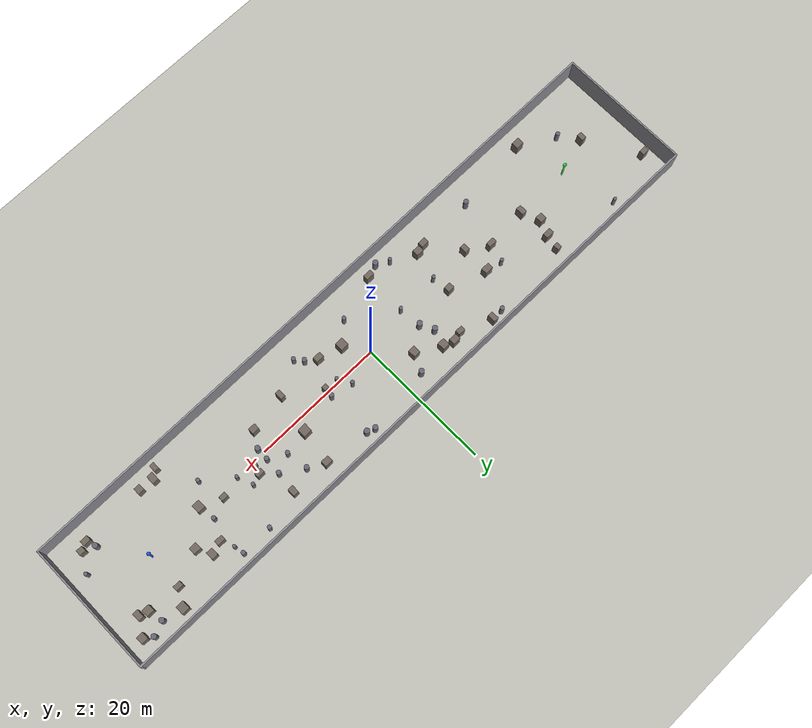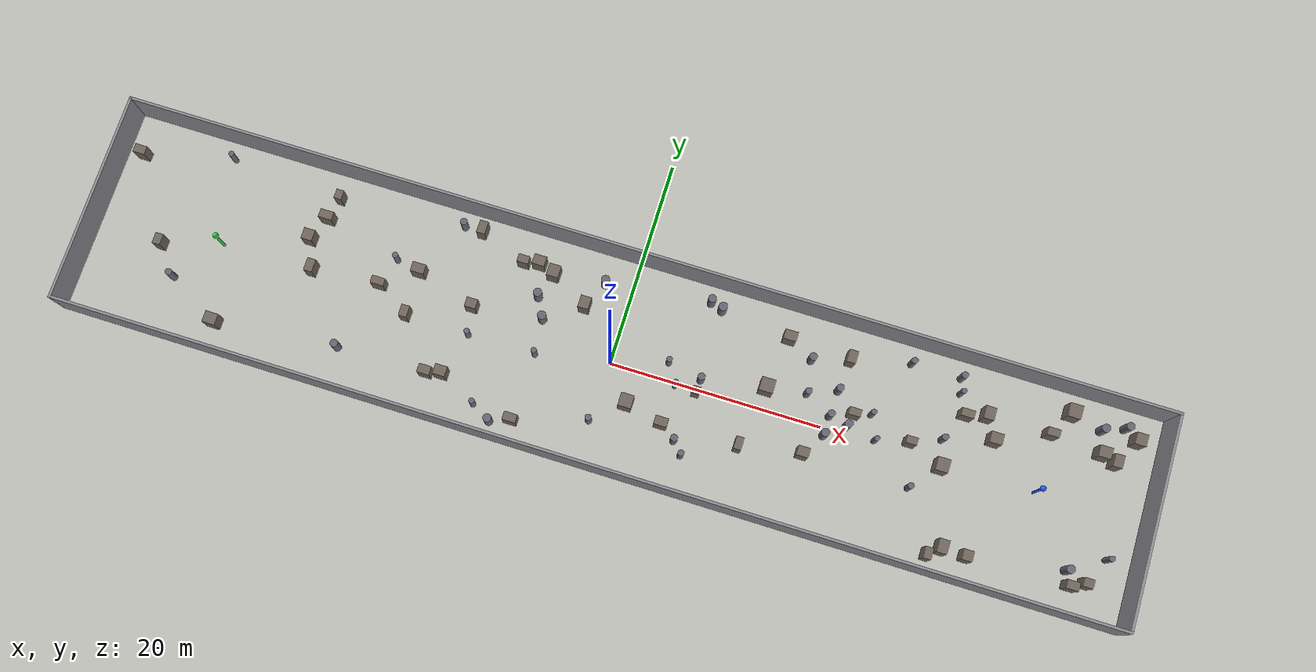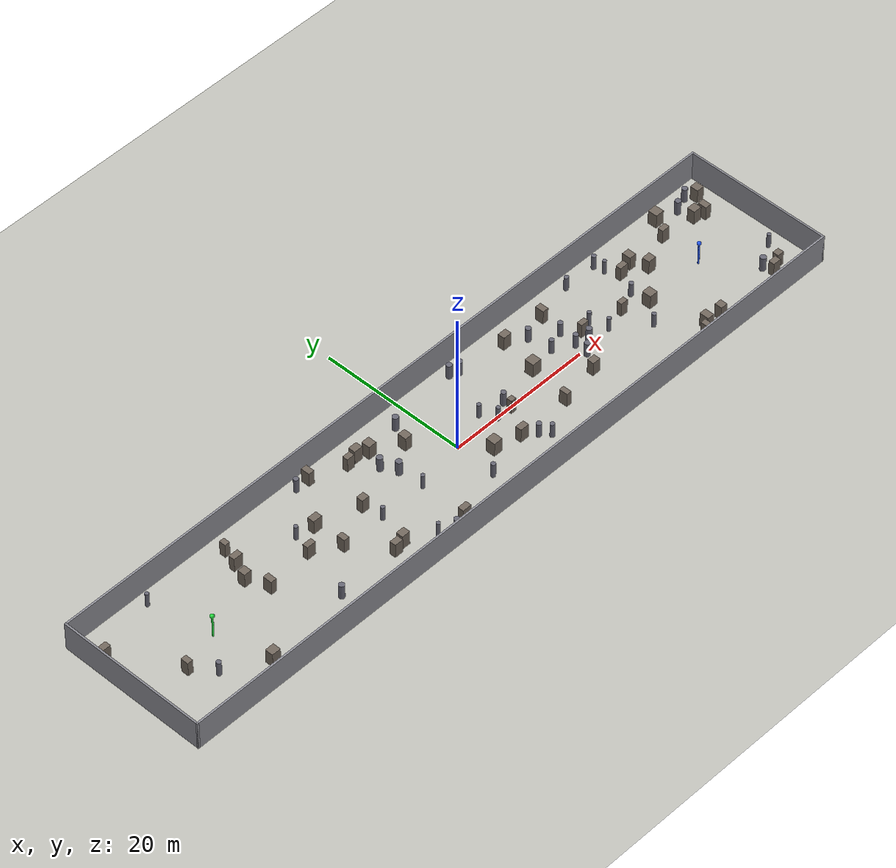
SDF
<?xml version="1.0" ?>
<sdf version="1.9">
  <world name="explore">
    <physics name="1ms" type="ignored">
      <max_step_size>0.001</max_step_size>
      <real_time_factor>1.0</real_time_factor>
      <real_time_update_rate>1000</real_time_update_rate>
    </physics>
    <plugin filename="gz-sim-physics-system" name="gz::sim::systems::Physics"/>
    <plugin filename="gz-sim-user-commands-system" name="gz::sim::systems::UserCommands"/>
    <plugin filename="gz-sim-scene-broadcaster-system" name="gz::sim::systems::SceneBroadcaster"/>
    <plugin filename="gz-sim-contact-system" name="gz::sim::systems::Contact"/>
    <plugin filename="gz-sim-imu-system" name="gz::sim::systems::Imu"/>
    <plugin filename="gz-sim-sensors-system" name="gz::sim::systems::Sensors">
      <render_engine>ogre2</render_engine>
    </plugin>
    <gui fullscreen="0">
      <camera name="user_camera">
        <pose>-42 -14 12 0 0.55 0.75</pose>
        <view_controller>orbit</view_controller>
        <projection_type>perspective</projection_type>
      </camera>
    </gui>
    <gravity>0 0 -9.8</gravity>
    <light type="directional" name="sun">
      <cast_shadows>true</cast_shadows>
      <pose>0 0 20 0 0 0</pose>
      <diffuse>0.8 0.8 0.8 1</diffuse>
      <specular>0.2 0.2 0.2 1</specular>
      <direction>-0.5 0.1 -0.9</direction>
    </light>
    <model name="ground_plane">
      <static>true</static>
      <link name="link">
        <collision name="collision">
          <geometry><plane><normal>0 0 1</normal><size>120 40</size></plane></geometry>
        </collision>
        <visual name="visual">
          <geometry><plane><normal>0 0 1</normal><size>120 40</size></plane></geometry>
          <material>
            <ambient>0.75 0.75 0.72 1</ambient>
            <diffuse>0.75 0.75 0.72 1</diffuse>
          </material>
        </visual>
      </link>
    </model>
    <model name="wall_north">
      <static>true</static>
      <pose>0.000 10.000 2.000 0 0 0</pose>
      <link name="link">
        <collision name="c"><geometry><box><size>100.250 0.250 4.000</size></box></geometry></collision>
        <visual name="v">
          <geometry><box><size>100.250 0.250 4.000</size></box></geometry>
          <material><ambient>0.55 0.55 0.58 1</ambient><diffuse>0.55 0.55 0.58 1</diffuse></material>
        </visual>
      </link>
    </model>
    <model name="wall_south">
      <static>true</static>
      <pose>0.000 -10.000 2.000 0 0 0</pose>
      <link name="link">
        <collision name="c"><geometry><box><size>100.250 0.250 4.000</size></box></geometry></collision>
        <visual name="v">
          <geometry><box><size>100.250 0.250 4.000</size></box></geometry>
          <material><ambient>0.55 0.55 0.58 1</ambient><diffuse>0.55 0.55 0.58 1</diffuse></material>
        </visual>
      </link>
    </model>
    <model name="wall_east">
      <static>true</static>
      <pose>50.000 0.000 2.000 0 0 0</pose>
      <link name="link">
        <collision name="c"><geometry><box><size>0.250 20.250 4.000</size></box></geometry></collision>
        <visual name="v">
          <geometry><box><size>0.250 20.250 4.000</size></box></geometry>
          <material><ambient>0.55 0.55 0.58 1</ambient><diffuse>0.55 0.55 0.58 1</diffuse></material>
        </visual>
      </link>
    </model>
    <model name="wall_west">
      <static>true</static>
      <pose>-50.000 0.000 2.000 0 0 0</pose>
      <link name="link">
        <collision name="c"><geometry><box><size>0.250 20.250 4.000</size></box></geometry></collision>
        <visual name="v">
          <geometry><box><size>0.250 20.250 4.000</size></box></geometry>
          <material><ambient>0.55 0.55 0.58 1</ambient><diffuse>0.55 0.55 0.58 1</diffuse></material>
        </visual>
      </link>
    </model>
    <model name="box_0">
      <static>true</static>
      <pose>13.285 -3.914 1 0 0 0</pose>
      <link name="link">
        <collision name="c"><geometry><box><size>0.710 1.188 2</size></box></geometry></collision>
        <visual name="v">
          <geometry><box><size>0.710 1.188 2</size></box></geometry>
          <material><ambient>0.44 0.40 0.36 1</ambient><diffuse>0.44 0.40 0.36 1</diffuse></material>
        </visual>
      </link>
    </model>
    <model name="cyl_1">
      <static>true</static>
      <pose>22.261 0.742 1 0 0 0</pose>
      <link name="link">
        <collision name="c"><geometry><cylinder><radius>0.389</radius><length>2</length></cylinder></geometry></collision>
        <visual name="v">
          <geometry><cylinder><radius>0.389</radius><length>2</length></cylinder></geometry>
          <material><ambient>0.40 0.40 0.45 1</ambient><diffuse>0.40 0.40 0.45 1</diffuse></material>
        </visual>
      </link>
    </model>
    <model name="box_2">
      <static>true</static>
      <pose>-48.234 6.076 1 0 0 0</pose>
      <link name="link">
        <collision name="c"><geometry><box><size>1.138 0.805 2</size></box></geometry></collision>
        <visual name="v">
          <geometry><box><size>1.138 0.805 2</size></box></geometry>
          <material><ambient>0.44 0.40 0.36 1</ambient><diffuse>0.44 0.40 0.36 1</diffuse></material>
        </visual>
      </link>
    </model>
    <model name="box_3">
      <static>true</static>
      <pose>-19.428 -1.314 1 0 0 0</pose>
      <link name="link">
        <collision name="c"><geometry><box><size>0.775 1.102 2</size></box></geometry></collision>
        <visual name="v">
          <geometry><box><size>0.775 1.102 2</size></box></geometry>
          <material><ambient>0.44 0.40 0.36 1</ambient><diffuse>0.44 0.40 0.36 1</diffuse></material>
        </visual>
      </link>
    </model>
    <model name="box_4">
      <static>true</static>
      <pose>14.277 1.962 1 0 0 0</pose>
      <link name="link">
        <collision name="c"><geometry><box><size>1.298 1.289 2</size></box></geometry></collision>
        <visual name="v">
          <geometry><box><size>1.298 1.289 2</size></box></geometry>
          <material><ambient>0.44 0.40 0.36 1</ambient><diffuse>0.44 0.40 0.36 1</diffuse></material>
        </visual>
      </link>
    </model>
    <model name="cyl_5">
      <static>true</static>
      <pose>17.998 2.558 1 0 0 0</pose>
      <link name="link">
        <collision name="c"><geometry><cylinder><radius>0.316</radius><length>2</length></cylinder></geometry></collision>
        <visual name="v">
          <geometry><cylinder><radius>0.316</radius><length>2</length></cylinder></geometry>
          <material><ambient>0.40 0.40 0.45 1</ambient><diffuse>0.40 0.40 0.45 1</diffuse></material>
        </visual>
      </link>
    </model>
    <model name="box_6">
      <static>true</static>
      <pose>2.459 -3.226 1 0 0 0</pose>
      <link name="link">
        <collision name="c"><geometry><box><size>1.234 1.260 2</size></box></geometry></collision>
        <visual name="v">
          <geometry><box><size>1.234 1.260 2</size></box></geometry>
          <material><ambient>0.44 0.40 0.36 1</ambient><diffuse>0.44 0.40 0.36 1</diffuse></material>
        </visual>
      </link>
    </model>
    <model name="box_7">
      <static>true</static>
      <pose>-13.794 1.216 1 0 0 0</pose>
      <link name="link">
        <collision name="c"><geometry><box><size>1.057 0.903 2</size></box></geometry></collision>
        <visual name="v">
          <geometry><box><size>1.057 0.903 2</size></box></geometry>
          <material><ambient>0.44 0.40 0.36 1</ambient><diffuse>0.44 0.40 0.36 1</diffuse></material>
        </visual>
      </link>
    </model>
    <model name="box_8">
      <static>true</static>
      <pose>-10.513 6.635 1 0 0 0</pose>
      <link name="link">
        <collision name="c"><geometry><box><size>1.074 0.750 2</size></box></geometry></collision>
        <visual name="v">
          <geometry><box><size>1.074 0.750 2</size></box></geometry>
          <material><ambient>0.44 0.40 0.36 1</ambient><diffuse>0.44 0.40 0.36 1</diffuse></material>
        </visual>
      </link>
    </model>
    <model name="box_9">
      <static>true</static>
      <pose>32.266 4.881 1 0 0 0</pose>
      <link name="link">
        <collision name="c"><geometry><box><size>1.226 0.735 2</size></box></geometry></collision>
        <visual name="v">
          <geometry><box><size>1.226 0.735 2</size></box></geometry>
          <material><ambient>0.44 0.40 0.36 1</ambient><diffuse>0.44 0.40 0.36 1</diffuse></material>
        </visual>
      </link>
    </model>
    <model name="box_10">
      <static>true</static>
      <pose>-15.897 -5.945 1 0 0 0</pose>
      <link name="link">
        <collision name="c"><geometry><box><size>1.178 0.838 2</size></box></geometry></collision>
        <visual name="v">
          <geometry><box><size>1.178 0.838 2</size></box></geometry>
          <material><ambient>0.44 0.40 0.36 1</ambient><diffuse>0.44 0.40 0.36 1</diffuse></material>
        </visual>
      </link>
    </model>
    <model name="box_11">
      <static>true</static>
      <pose>-43.454 -1.623 1 0 0 0</pose>
      <link name="link">
        <collision name="c"><geometry><box><size>0.754 1.048 2</size></box></geometry></collision>
        <visual name="v">
          <geometry><box><size>0.754 1.048 2</size></box></geometry>
          <material><ambient>0.44 0.40 0.36 1</ambient><diffuse>0.44 0.40 0.36 1</diffuse></material>
        </visual>
      </link>
    </model>
    <model name="box_12">
      <static>true</static>
      <pose>-19.526 2.924 1 0 0 0</pose>
      <link name="link">
        <collision name="c"><geometry><box><size>1.265 0.919 2</size></box></geometry></collision>
        <visual name="v">
          <geometry><box><size>1.265 0.919 2</size></box></geometry>
          <material><ambient>0.44 0.40 0.36 1</ambient><diffuse>0.44 0.40 0.36 1</diffuse></material>
        </visual>
      </link>
    </model>
    <model name="cyl_13">
      <static>true</static>
      <pose>-7.253 2.044 1 0 0 0</pose>
      <link name="link">
        <collision name="c"><geometry><cylinder><radius>0.411</radius><length>2</length></cylinder></geometry></collision>
        <visual name="v">
          <geometry><cylinder><radius>0.411</radius><length>2</length></cylinder></geometry>
          <material><ambient>0.40 0.40 0.45 1</ambient><diffuse>0.40 0.40 0.45 1</diffuse></material>
        </visual>
      </link>
    </model>
    <model name="box_14">
      <static>true</static>
      <pose>-3.876 4.381 1 0 0 0</pose>
      <link name="link">
        <collision name="c"><geometry><box><size>1.018 1.171 2</size></box></geometry></collision>
        <visual name="v">
          <geometry><box><size>1.018 1.171 2</size></box></geometry>
          <material><ambient>0.44 0.40 0.36 1</ambient><diffuse>0.44 0.40 0.36 1</diffuse></material>
        </visual>
      </link>
    </model>
    <model name="cyl_15">
      <static>true</static>
      <pose>-8.278 3.986 1 0 0 0</pose>
      <link name="link">
        <collision name="c"><geometry><cylinder><radius>0.408</radius><length>2</length></cylinder></geometry></collision>
        <visual name="v">
          <geometry><cylinder><radius>0.408</radius><length>2</length></cylinder></geometry>
          <material><ambient>0.40 0.40 0.45 1</ambient><diffuse>0.40 0.40 0.45 1</diffuse></material>
        </visual>
      </link>
    </model>
    <model name="box_16">
      <static>true</static>
      <pose>41.460 7.955 1 0 0 0</pose>
      <link name="link">
        <collision name="c"><geometry><box><size>1.218 1.289 2</size></box></geometry></collision>
        <visual name="v">
          <geometry><box><size>1.218 1.289 2</size></box></geometry>
          <material><ambient>0.44 0.40 0.36 1</ambient><diffuse>0.44 0.40 0.36 1</diffuse></material>
        </visual>
      </link>
    </model>
    <model name="cyl_17">
      <static>true</static>
      <pose>44.349 -5.971 1 0 0 0</pose>
      <link name="link">
        <collision name="c"><geometry><cylinder><radius>0.401</radius><length>2</length></cylinder></geometry></collision>
        <visual name="v">
          <geometry><cylinder><radius>0.401</radius><length>2</length></cylinder></geometry>
          <material><ambient>0.40 0.40 0.45 1</ambient><diffuse>0.40 0.40 0.45 1</diffuse></material>
        </visual>
      </link>
    </model>
    <model name="box_18">
      <static>true</static>
      <pose>31.270 -0.340 1 0 0 0</pose>
      <link name="link">
        <collision name="c"><geometry><box><size>1.181 1.254 2</size></box></geometry></collision>
        <visual name="v">
          <geometry><box><size>1.181 1.254 2</size></box></geometry>
          <material><ambient>0.44 0.40 0.36 1</ambient><diffuse>0.44 0.40 0.36 1</diffuse></material>
        </visual>
      </link>
    </model>
    <model name="box_19">
      <static>true</static>
      <pose>-22.685 0.662 1 0 0 0</pose>
      <link name="link">
        <collision name="c"><geometry><box><size>1.259 0.724 2</size></box></geometry></collision>
        <visual name="v">
          <geometry><box><size>1.259 0.724 2</size></box></geometry>
          <material><ambient>0.44 0.40 0.36 1</ambient><diffuse>0.44 0.40 0.36 1</diffuse></material>
        </visual>
      </link>
    </model>
    <model name="box_20">
      <static>true</static>
      <pose>22.505 1.944 1 0 0 0</pose>
      <link name="link">
        <collision name="c"><geometry><box><size>1.132 0.710 2</size></box></geometry></collision>
        <visual name="v">
          <geometry><box><size>1.132 0.710 2</size></box></geometry>
          <material><ambient>0.44 0.40 0.36 1</ambient><diffuse>0.44 0.40 0.36 1</diffuse></material>
        </visual>
      </link>
    </model>
    <model name="cyl_21">
      <static>true</static>
      <pose>25.021 0.217 1 0 0 0</pose>
      <link name="link">
        <collision name="c"><geometry><cylinder><radius>0.261</radius><length>2</length></cylinder></geometry></collision>
        <visual name="v">
          <geometry><cylinder><radius>0.261</radius><length>2</length></cylinder></geometry>
          <material><ambient>0.40 0.40 0.45 1</ambient><diffuse>0.40 0.40 0.45 1</diffuse></material>
        </visual>
      </link>
    </model>
    <model name="box_22">
      <static>true</static>
      <pose>33.108 -7.366 1 0 0 0</pose>
      <link name="link">
        <collision name="c"><geometry><box><size>0.958 1.280 2</size></box></geometry></collision>
        <visual name="v">
          <geometry><box><size>0.958 1.280 2</size></box></geometry>
          <material><ambient>0.44 0.40 0.36 1</ambient><diffuse>0.44 0.40 0.36 1</diffuse></material>
        </visual>
      </link>
    </model>
    <model name="box_23">
      <static>true</static>
      <pose>6.036 -4.099 1 0 0 0</pose>
      <link name="link">
        <collision name="c"><geometry><box><size>1.233 0.836 2</size></box></geometry></collision>
        <visual name="v">
          <geometry><box><size>1.233 0.836 2</size></box></geometry>
          <material><ambient>0.44 0.40 0.36 1</ambient><diffuse>0.44 0.40 0.36 1</diffuse></material>
        </visual>
      </link>
    </model>
    <model name="cyl_24">
      <static>true</static>
      <pose>8.354 0.920 1 0 0 0</pose>
      <link name="link">
        <collision name="c"><geometry><cylinder><radius>0.345</radius><length>2</length></cylinder></geometry></collision>
        <visual name="v">
          <geometry><cylinder><radius>0.345</radius><length>2</length></cylinder></geometry>
          <material><ambient>0.40 0.40 0.45 1</ambient><diffuse>0.40 0.40 0.45 1</diffuse></material>
        </visual>
      </link>
    </model>
    <model name="cyl_25">
      <static>true</static>
      <pose>30.858 2.151 1 0 0 0</pose>
      <link name="link">
        <collision name="c"><geometry><cylinder><radius>0.313</radius><length>2</length></cylinder></geometry></collision>
        <visual name="v">
          <geometry><cylinder><radius>0.313</radius><length>2</length></cylinder></geometry>
          <material><ambient>0.40 0.40 0.45 1</ambient><diffuse>0.40 0.40 0.45 1</diffuse></material>
        </visual>
      </link>
    </model>
    <model name="cyl_26">
      <static>true</static>
      <pose>5.103 1.597 1 0 0 0</pose>
      <link name="link">
        <collision name="c"><geometry><cylinder><radius>0.275</radius><length>2</length></cylinder></geometry></collision>
        <visual name="v">
          <geometry><cylinder><radius>0.275</radius><length>2</length></cylinder></geometry>
          <material><ambient>0.40 0.40 0.45 1</ambient><diffuse>0.40 0.40 0.45 1</diffuse></material>
        </visual>
      </link>
    </model>
    <model name="box_27">
      <static>true</static>
      <pose>-9.068 6.969 1 0 0 0</pose>
      <link name="link">
        <collision name="c"><geometry><box><size>1.194 0.949 2</size></box></geometry></collision>
        <visual name="v">
          <geometry><box><size>1.194 0.949 2</size></box></geometry>
          <material><ambient>0.44 0.40 0.36 1</ambient><diffuse>0.44 0.40 0.36 1</diffuse></material>
        </visual>
      </link>
    </model>
    <model name="box_28">
      <static>true</static>
      <pose>31.991 -8.331 1 0 0 0</pose>
      <link name="link">
        <collision name="c"><geometry><box><size>0.747 1.092 2</size></box></geometry></collision>
        <visual name="v">
          <geometry><box><size>0.747 1.092 2</size></box></geometry>
          <material><ambient>0.44 0.40 0.36 1</ambient><diffuse>0.44 0.40 0.36 1</diffuse></material>
        </visual>
      </link>
    </model>
    <model name="cyl_29">
      <static>true</static>
      <pose>-21.937 3.445 1 0 0 0</pose>
      <link name="link">
        <collision name="c"><geometry><cylinder><radius>0.272</radius><length>2</length></cylinder></geometry></collision>
        <visual name="v">
          <geometry><cylinder><radius>0.272</radius><length>2</length></cylinder></geometry>
          <material><ambient>0.40 0.40 0.45 1</ambient><diffuse>0.40 0.40 0.45 1</diffuse></material>
        </visual>
      </link>
    </model>
    <model name="box_30">
      <static>true</static>
      <pose>35.383 -7.489 1 0 0 0</pose>
      <link name="link">
        <collision name="c"><geometry><box><size>0.958 0.993 2</size></box></geometry></collision>
        <visual name="v">
          <geometry><box><size>0.958 0.993 2</size></box></geometry>
          <material><ambient>0.44 0.40 0.36 1</ambient><diffuse>0.44 0.40 0.36 1</diffuse></material>
        </visual>
      </link>
    </model>
    <model name="box_31">
      <static>true</static>
      <pose>46.217 4.687 1 0 0 0</pose>
      <link name="link">
        <collision name="c"><geometry><box><size>0.862 1.218 2</size></box></geometry></collision>
        <visual name="v">
          <geometry><box><size>0.862 1.218 2</size></box></geometry>
          <material><ambient>0.44 0.40 0.36 1</ambient><diffuse>0.44 0.40 0.36 1</diffuse></material>
        </visual>
      </link>
    </model>
    <model name="box_32">
      <static>true</static>
      <pose>-15.103 8.414 1 0 0 0</pose>
      <link name="link">
        <collision name="c"><geometry><box><size>0.810 1.228 2</size></box></geometry></collision>
        <visual name="v">
          <geometry><box><size>0.810 1.228 2</size></box></geometry>
          <material><ambient>0.44 0.40 0.36 1</ambient><diffuse>0.44 0.40 0.36 1</diffuse></material>
        </visual>
      </link>
    </model>
    <model name="cyl_33">
      <static>true</static>
      <pose>44.466 7.237 1 0 0 0</pose>
      <link name="link">
        <collision name="c"><geometry><cylinder><radius>0.396</radius><length>2</length></cylinder></geometry></collision>
        <visual name="v">
          <geometry><cylinder><radius>0.396</radius><length>2</length></cylinder></geometry>
          <material><ambient>0.40 0.40 0.45 1</ambient><diffuse>0.40 0.40 0.45 1</diffuse></material>
        </visual>
      </link>
    </model>
    <model name="cyl_34">
      <static>true</static>
      <pose>-24.527 -6.099 1 0 0 0</pose>
      <link name="link">
        <collision name="c"><geometry><cylinder><radius>0.371</radius><length>2</length></cylinder></geometry></collision>
        <visual name="v">
          <geometry><cylinder><radius>0.371</radius><length>2</length></cylinder></geometry>
          <material><ambient>0.40 0.40 0.45 1</ambient><diffuse>0.40 0.40 0.45 1</diffuse></material>
        </visual>
      </link>
    </model>
    <model name="cyl_35">
      <static>true</static>
      <pose>7.599 -5.200 1 0 0 0</pose>
      <link name="link">
        <collision name="c"><geometry><cylinder><radius>0.339</radius><length>2</length></cylinder></geometry></collision>
        <visual name="v">
          <geometry><cylinder><radius>0.339</radius><length>2</length></cylinder></geometry>
          <material><ambient>0.40 0.40 0.45 1</ambient><diffuse>0.40 0.40 0.45 1</diffuse></material>
        </visual>
      </link>
    </model>
    <model name="cyl_36">
      <static>true</static>
      <pose>-39.873 8.193 1 0 0 0</pose>
      <link name="link">
        <collision name="c"><geometry><cylinder><radius>0.251</radius><length>2</length></cylinder></geometry></collision>
        <visual name="v">
          <geometry><cylinder><radius>0.251</radius><length>2</length></cylinder></geometry>
          <material><ambient>0.40 0.40 0.45 1</ambient><diffuse>0.40 0.40 0.45 1</diffuse></material>
        </visual>
      </link>
    </model>
    <model name="cyl_37">
      <static>true</static>
      <pose>26.447 8.131 1 0 0 0</pose>
      <link name="link">
        <collision name="c"><geometry><cylinder><radius>0.304</radius><length>2</length></cylinder></geometry></collision>
        <visual name="v">
          <geometry><cylinder><radius>0.304</radius><length>2</length></cylinder></geometry>
          <material><ambient>0.40 0.40 0.45 1</ambient><diffuse>0.40 0.40 0.45 1</diffuse></material>
        </visual>
      </link>
    </model>
    <model name="box_38">
      <static>true</static>
      <pose>-30.312 2.933 1 0 0 0</pose>
      <link name="link">
        <collision name="c"><geometry><box><size>1.047 1.061 2</size></box></geometry></collision>
        <visual name="v">
          <geometry><box><size>1.047 1.061 2</size></box></geometry>
          <material><ambient>0.44 0.40 0.36 1</ambient><diffuse>0.44 0.40 0.36 1</diffuse></material>
        </visual>
      </link>
    </model>
    <model name="box_39">
      <static>true</static>
      <pose>44.855 -7.271 1 0 0 0</pose>
      <link name="link">
        <collision name="c"><geometry><box><size>1.146 0.806 2</size></box></geometry></collision>
        <visual name="v">
          <geometry><box><size>1.146 0.806 2</size></box></geometry>
          <material><ambient>0.44 0.40 0.36 1</ambient><diffuse>0.44 0.40 0.36 1</diffuse></material>
        </visual>
      </link>
    </model>
    <model name="cyl_40">
      <static>true</static>
      <pose>-10.858 -7.431 1 0 0 0</pose>
      <link name="link">
        <collision name="c"><geometry><cylinder><radius>0.265</radius><length>2</length></cylinder></geometry></collision>
        <visual name="v">
          <geometry><cylinder><radius>0.265</radius><length>2</length></cylinder></geometry>
          <material><ambient>0.40 0.40 0.45 1</ambient><diffuse>0.40 0.40 0.45 1</diffuse></material>
        </visual>
      </link>
    </model>
    <model name="cyl_41">
      <static>true</static>
      <pose>-2.687 7.015 1 0 0 0</pose>
      <link name="link">
        <collision name="c"><geometry><cylinder><radius>0.406</radius><length>2</length></cylinder></geometry></collision>
        <visual name="v">
          <geometry><cylinder><radius>0.406</radius><length>2</length></cylinder></geometry>
          <material><ambient>0.40 0.40 0.45 1</ambient><diffuse>0.40 0.40 0.45 1</diffuse></material>
        </visual>
      </link>
    </model>
    <model name="box_42">
      <static>true</static>
      <pose>-36.142 -7.249 1 0 0 0</pose>
      <link name="link">
        <collision name="c"><geometry><box><size>1.221 1.080 2</size></box></geometry></collision>
        <visual name="v">
          <geometry><box><size>1.221 1.080 2</size></box></geometry>
          <material><ambient>0.44 0.40 0.36 1</ambient><diffuse>0.44 0.40 0.36 1</diffuse></material>
        </visual>
      </link>
    </model>
    <model name="cyl_43">
      <static>true</static>
      <pose>-0.333 -5.720 1 0 0 0</pose>
      <link name="link">
        <collision name="c"><geometry><cylinder><radius>0.304</radius><length>2</length></cylinder></geometry></collision>
        <visual name="v">
          <geometry><cylinder><radius>0.304</radius><length>2</length></cylinder></geometry>
          <material><ambient>0.40 0.40 0.45 1</ambient><diffuse>0.40 0.40 0.45 1</diffuse></material>
        </visual>
      </link>
    </model>
    <model name="cyl_44">
      <static>true</static>
      <pose>20.455 -0.674 1 0 0 0</pose>
      <link name="link">
        <collision name="c"><geometry><cylinder><radius>0.384</radius><length>2</length></cylinder></geometry></collision>
        <visual name="v">
          <geometry><cylinder><radius>0.384</radius><length>2</length></cylinder></geometry>
          <material><ambient>0.40 0.40 0.45 1</ambient><diffuse>0.40 0.40 0.45 1</diffuse></material>
        </visual>
      </link>
    </model>
    <model name="box_45">
      <static>true</static>
      <pose>-29.368 5.238 1 0 0 0</pose>
      <link name="link">
        <collision name="c"><geometry><box><size>1.293 0.810 2</size></box></geometry></collision>
        <visual name="v">
          <geometry><box><size>1.293 0.810 2</size></box></geometry>
          <material><ambient>0.44 0.40 0.36 1</ambient><diffuse>0.44 0.40 0.36 1</diffuse></material>
        </visual>
      </link>
    </model>
    <model name="box_46">
      <static>true</static>
      <pose>44.913 5.116 1 0 0 0</pose>
      <link name="link">
        <collision name="c"><geometry><box><size>1.188 1.062 2</size></box></geometry></collision>
        <visual name="v">
          <geometry><box><size>1.188 1.062 2</size></box></geometry>
          <material><ambient>0.44 0.40 0.36 1</ambient><diffuse>0.44 0.40 0.36 1</diffuse></material>
        </visual>
      </link>
    </model>
    <model name="box_47">
      <static>true</static>
      <pose>15.047 7.033 1 0 0 0</pose>
      <link name="link">
        <collision name="c"><geometry><box><size>1.201 0.929 2</size></box></geometry></collision>
        <visual name="v">
          <geometry><box><size>1.201 0.929 2</size></box></geometry>
          <material><ambient>0.44 0.40 0.36 1</ambient><diffuse>0.44 0.40 0.36 1</diffuse></material>
        </visual>
      </link>
    </model>
    <model name="cyl_48">
      <static>true</static>
      <pose>-16.922 8.398 1 0 0 0</pose>
      <link name="link">
        <collision name="c"><geometry><cylinder><radius>0.333</radius><length>2</length></cylinder></geometry></collision>
        <visual name="v">
          <geometry><cylinder><radius>0.333</radius><length>2</length></cylinder></geometry>
          <material><ambient>0.40 0.40 0.45 1</ambient><diffuse>0.40 0.40 0.45 1</diffuse></material>
        </visual>
      </link>
    </model>
    <model name="box_49">
      <static>true</static>
      <pose>-7.505 6.418 1 0 0 0</pose>
      <link name="link">
        <collision name="c"><geometry><box><size>1.125 1.173 2</size></box></geometry></collision>
        <visual name="v">
          <geometry><box><size>1.125 1.173 2</size></box></geometry>
          <material><ambient>0.44 0.40 0.36 1</ambient><diffuse>0.44 0.40 0.36 1</diffuse></material>
        </visual>
      </link>
    </model>
    <model name="cyl_50">
      <static>true</static>
      <pose>29.022 -3.021 1 0 0 0</pose>
      <link name="link">
        <collision name="c"><geometry><cylinder><radius>0.288</radius><length>2</length></cylinder></geometry></collision>
        <visual name="v">
          <geometry><cylinder><radius>0.288</radius><length>2</length></cylinder></geometry>
          <material><ambient>0.40 0.40 0.45 1</ambient><diffuse>0.40 0.40 0.45 1</diffuse></material>
        </visual>
      </link>
    </model>
    <model name="cyl_51">
      <static>true</static>
      <pose>-13.356 -1.403 1 0 0 0</pose>
      <link name="link">
        <collision name="c"><geometry><cylinder><radius>0.269</radius><length>2</length></cylinder></geometry></collision>
        <visual name="v">
          <geometry><cylinder><radius>0.269</radius><length>2</length></cylinder></geometry>
          <material><ambient>0.40 0.40 0.45 1</ambient><diffuse>0.40 0.40 0.45 1</diffuse></material>
        </visual>
      </link>
    </model>
    <model name="cyl_52">
      <static>true</static>
      <pose>-9.026 -8.495 1 0 0 0</pose>
      <link name="link">
        <collision name="c"><geometry><cylinder><radius>0.395</radius><length>2</length></cylinder></geometry></collision>
        <visual name="v">
          <geometry><cylinder><radius>0.395</radius><length>2</length></cylinder></geometry>
          <material><ambient>0.40 0.40 0.45 1</ambient><diffuse>0.40 0.40 0.45 1</diffuse></material>
        </visual>
      </link>
    </model>
    <model name="cyl_53">
      <static>true</static>
      <pose>31.147 8.191 1 0 0 0</pose>
      <link name="link">
        <collision name="c"><geometry><cylinder><radius>0.322</radius><length>2</length></cylinder></geometry></collision>
        <visual name="v">
          <geometry><cylinder><radius>0.322</radius><length>2</length></cylinder></geometry>
          <material><ambient>0.40 0.40 0.45 1</ambient><diffuse>0.40 0.40 0.45 1</diffuse></material>
        </visual>
      </link>
    </model>
    <model name="cyl_54">
      <static>true</static>
      <pose>46.530 8.058 1 0 0 0</pose>
      <link name="link">
        <collision name="c"><geometry><cylinder><radius>0.378</radius><length>2</length></cylinder></geometry></collision>
        <visual name="v">
          <geometry><cylinder><radius>0.378</radius><length>2</length></cylinder></geometry>
          <material><ambient>0.40 0.40 0.45 1</ambient><diffuse>0.40 0.40 0.45 1</diffuse></material>
        </visual>
      </link>
    </model>
    <model name="box_55">
      <static>true</static>
      <pose>35.287 3.427 1 0 0 0</pose>
      <link name="link">
        <collision name="c"><geometry><box><size>1.161 1.042 2</size></box></geometry></collision>
        <visual name="v">
          <geometry><box><size>1.161 1.042 2</size></box></geometry>
          <material><ambient>0.44 0.40 0.36 1</ambient><diffuse>0.44 0.40 0.36 1</diffuse></material>
        </visual>
      </link>
    </model>
    <model name="cyl_56">
      <static>true</static>
      <pose>-6.932 -1.296 1 0 0 0</pose>
      <link name="link">
        <collision name="c"><geometry><cylinder><radius>0.271</radius><length>2</length></cylinder></geometry></collision>
        <visual name="v">
          <geometry><cylinder><radius>0.271</radius><length>2</length></cylinder></geometry>
          <material><ambient>0.40 0.40 0.45 1</ambient><diffuse>0.40 0.40 0.45 1</diffuse></material>
        </visual>
      </link>
    </model>
    <model name="cyl_57">
      <static>true</static>
      <pose>31.407 6.746 1 0 0 0</pose>
      <link name="link">
        <collision name="c"><geometry><cylinder><radius>0.257</radius><length>2</length></cylinder></geometry></collision>
        <visual name="v">
          <geometry><cylinder><radius>0.257</radius><length>2</length></cylinder></geometry>
          <material><ambient>0.40 0.40 0.45 1</ambient><diffuse>0.40 0.40 0.45 1</diffuse></material>
        </visual>
      </link>
    </model>
    <model name="cyl_58">
      <static>true</static>
      <pose>20.514 1.173 1 0 0 0</pose>
      <link name="link">
        <collision name="c"><geometry><cylinder><radius>0.340</radius><length>2</length></cylinder></geometry></collision>
        <visual name="v">
          <geometry><cylinder><radius>0.340</radius><length>2</length></cylinder></geometry>
          <material><ambient>0.40 0.40 0.45 1</ambient><diffuse>0.40 0.40 0.45 1</diffuse></material>
        </visual>
      </link>
    </model>
    <model name="box_59">
      <static>true</static>
      <pose>-14.496 -5.593 1 0 0 0</pose>
      <link name="link">
        <collision name="c"><geometry><box><size>1.152 0.964 2</size></box></geometry></collision>
        <visual name="v">
          <geometry><box><size>1.152 0.964 2</size></box></geometry>
          <material><ambient>0.44 0.40 0.36 1</ambient><diffuse>0.44 0.40 0.36 1</diffuse></material>
        </visual>
      </link>
    </model>
    <model name="cyl_60">
      <static>true</static>
      <pose>8.573 -6.335 1 0 0 0</pose>
      <link name="link">
        <collision name="c"><geometry><cylinder><radius>0.298</radius><length>2</length></cylinder></geometry></collision>
        <visual name="v">
          <geometry><cylinder><radius>0.298</radius><length>2</length></cylinder></geometry>
          <material><ambient>0.40 0.40 0.45 1</ambient><diffuse>0.40 0.40 0.45 1</diffuse></material>
        </visual>
      </link>
    </model>
    <model name="cyl_61">
      <static>true</static>
      <pose>6.248 -0.264 1 0 0 0</pose>
      <link name="link">
        <collision name="c"><geometry><cylinder><radius>0.265</radius><length>2</length></cylinder></geometry></collision>
        <visual name="v">
          <geometry><cylinder><radius>0.265</radius><length>2</length></cylinder></geometry>
          <material><ambient>0.40 0.40 0.45 1</ambient><diffuse>0.40 0.40 0.45 1</diffuse></material>
        </visual>
      </link>
    </model>
    <model name="box_62">
      <static>true</static>
      <pose>19.027 -2.924 1 0 0 0</pose>
      <link name="link">
        <collision name="c"><geometry><box><size>1.105 0.918 2</size></box></geometry></collision>
        <visual name="v">
          <geometry><box><size>1.105 0.918 2</size></box></geometry>
          <material><ambient>0.44 0.40 0.36 1</ambient><diffuse>0.44 0.40 0.36 1</diffuse></material>
        </visual>
      </link>
    </model>
    <model name="box_63">
      <static>true</static>
      <pose>-29.168 0.207 1 0 0 0</pose>
      <link name="link">
        <collision name="c"><geometry><box><size>0.798 1.230 2</size></box></geometry></collision>
        <visual name="v">
          <geometry><box><size>0.798 1.230 2</size></box></geometry>
          <material><ambient>0.44 0.40 0.36 1</ambient><diffuse>0.44 0.40 0.36 1</diffuse></material>
        </visual>
      </link>
    </model>
    <model name="box_64">
      <static>true</static>
      <pose>28.057 0.966 1 0 0 0</pose>
      <link name="link">
        <collision name="c"><geometry><box><size>1.035 0.707 2</size></box></geometry></collision>
        <visual name="v">
          <geometry><box><size>1.035 0.707 2</size></box></geometry>
          <material><ambient>0.44 0.40 0.36 1</ambient><diffuse>0.44 0.40 0.36 1</diffuse></material>
        </visual>
      </link>
    </model>
    <model name="cyl_65">
      <static>true</static>
      <pose>20.660 3.685 1 0 0 0</pose>
      <link name="link">
        <collision name="c"><geometry><cylinder><radius>0.354</radius><length>2</length></cylinder></geometry></collision>
        <visual name="v">
          <geometry><cylinder><radius>0.354</radius><length>2</length></cylinder></geometry>
          <material><ambient>0.40 0.40 0.45 1</ambient><diffuse>0.40 0.40 0.45 1</diffuse></material>
        </visual>
      </link>
    </model>
    <model name="cyl_66">
      <static>true</static>
      <pose>-41.350 -4.311 1 0 0 0</pose>
      <link name="link">
        <collision name="c"><geometry><cylinder><radius>0.317</radius><length>2</length></cylinder></geometry></collision>
        <visual name="v">
          <geometry><cylinder><radius>0.317</radius><length>2</length></cylinder></geometry>
          <material><ambient>0.40 0.40 0.45 1</ambient><diffuse>0.40 0.40 0.45 1</diffuse></material>
        </visual>
      </link>
    </model>
    <model name="box_67">
      <static>true</static>
      <pose>47.726 7.204 1 0 0 0</pose>
      <link name="link">
        <collision name="c"><geometry><box><size>1.054 1.118 2</size></box></geometry></collision>
        <visual name="v">
          <geometry><box><size>1.054 1.118 2</size></box></geometry>
          <material><ambient>0.44 0.40 0.36 1</ambient><diffuse>0.44 0.40 0.36 1</diffuse></material>
        </visual>
      </link>
    </model>
    <model name="box_68">
      <static>true</static>
      <pose>20.944 6.819 1 0 0 0</pose>
      <link name="link">
        <collision name="c"><geometry><box><size>0.843 1.193 2</size></box></geometry></collision>
        <visual name="v">
          <geometry><box><size>0.843 1.193 2</size></box></geometry>
          <material><ambient>0.44 0.40 0.36 1</ambient><diffuse>0.44 0.40 0.36 1</diffuse></material>
        </visual>
      </link>
    </model>
    <model name="box_69">
      <static>true</static>
      <pose>8.243 -0.398 1 0 0 0</pose>
      <link name="link">
        <collision name="c"><geometry><box><size>0.744 0.711 2</size></box></geometry></collision>
        <visual name="v">
          <geometry><box><size>0.744 0.711 2</size></box></geometry>
          <material><ambient>0.44 0.40 0.36 1</ambient><diffuse>0.44 0.40 0.36 1</diffuse></material>
        </visual>
      </link>
    </model>
    <model name="box_70">
      <static>true</static>
      <pose>46.127 -6.673 1 0 0 0</pose>
      <link name="link">
        <collision name="c"><geometry><box><size>0.937 0.839 2</size></box></geometry></collision>
        <visual name="v">
          <geometry><box><size>0.937 0.839 2</size></box></geometry>
          <material><ambient>0.44 0.40 0.36 1</ambient><diffuse>0.44 0.40 0.36 1</diffuse></material>
        </visual>
      </link>
    </model>
    <model name="cyl_71">
      <static>true</static>
      <pose>24.129 2.443 1 0 0 0</pose>
      <link name="link">
        <collision name="c"><geometry><cylinder><radius>0.264</radius><length>2</length></cylinder></geometry></collision>
        <visual name="v">
          <geometry><cylinder><radius>0.264</radius><length>2</length></cylinder></geometry>
          <material><ambient>0.40 0.40 0.45 1</ambient><diffuse>0.40 0.40 0.45 1</diffuse></material>
        </visual>
      </link>
    </model>
    <model name="box_72">
      <static>true</static>
      <pose>-7.108 -7.810 1 0 0 0</pose>
      <link name="link">
        <collision name="c"><geometry><box><size>1.267 0.798 2</size></box></geometry></collision>
        <visual name="v">
          <geometry><box><size>1.267 0.798 2</size></box></geometry>
          <material><ambient>0.44 0.40 0.36 1</ambient><diffuse>0.44 0.40 0.36 1</diffuse></material>
        </visual>
      </link>
    </model>
    <model name="box_73">
      <static>true</static>
      <pose>34.149 5.476 1 0 0 0</pose>
      <link name="link">
        <collision name="c"><geometry><box><size>0.980 1.194 2</size></box></geometry></collision>
        <visual name="v">
          <geometry><box><size>0.980 1.194 2</size></box></geometry>
          <material><ambient>0.44 0.40 0.36 1</ambient><diffuse>0.44 0.40 0.36 1</diffuse></material>
        </visual>
      </link>
    </model>
    <model name="cyl_74">
      <static>true</static>
      <pose>17.527 5.728 1 0 0 0</pose>
      <link name="link">
        <collision name="c"><geometry><cylinder><radius>0.368</radius><length>2</length></cylinder></geometry></collision>
        <visual name="v">
          <geometry><cylinder><radius>0.368</radius><length>2</length></cylinder></geometry>
          <material><ambient>0.40 0.40 0.45 1</ambient><diffuse>0.40 0.40 0.45 1</diffuse></material>
        </visual>
      </link>
    </model>
    <model name="box_75">
      <static>true</static>
      <pose>40.058 5.488 1 0 0 0</pose>
      <link name="link">
        <collision name="c"><geometry><box><size>1.149 0.752 2</size></box></geometry></collision>
        <visual name="v">
          <geometry><box><size>1.149 0.752 2</size></box></geometry>
          <material><ambient>0.44 0.40 0.36 1</ambient><diffuse>0.44 0.40 0.36 1</diffuse></material>
        </visual>
      </link>
    </model>
    <model name="box_76">
      <static>true</static>
      <pose>-28.890 7.444 1 0 0 0</pose>
      <link name="link">
        <collision name="c"><geometry><box><size>0.703 0.894 2</size></box></geometry></collision>
        <visual name="v">
          <geometry><box><size>0.703 0.894 2</size></box></geometry>
          <material><ambient>0.44 0.40 0.36 1</ambient><diffuse>0.44 0.40 0.36 1</diffuse></material>
        </visual>
      </link>
    </model>
    <model name="cyl_77">
      <static>true</static>
      <pose>47.602 -4.000 1 0 0 0</pose>
      <link name="link">
        <collision name="c"><geometry><cylinder><radius>0.279</radius><length>2</length></cylinder></geometry></collision>
        <visual name="v">
          <geometry><cylinder><radius>0.279</radius><length>2</length></cylinder></geometry>
          <material><ambient>0.40 0.40 0.45 1</ambient><diffuse>0.40 0.40 0.45 1</diffuse></material>
        </visual>
      </link>
    </model>
    <model name="cyl_78">
      <static>true</static>
      <pose>8.379 7.793 1 0 0 0</pose>
      <link name="link">
        <collision name="c"><geometry><cylinder><radius>0.417</radius><length>2</length></cylinder></geometry></collision>
        <visual name="v">
          <geometry><cylinder><radius>0.417</radius><length>2</length></cylinder></geometry>
          <material><ambient>0.40 0.40 0.45 1</ambient><diffuse>0.40 0.40 0.45 1</diffuse></material>
        </visual>
      </link>
    </model>
    <model name="cyl_79">
      <static>true</static>
      <pose>7.232 8.217 1 0 0 0</pose>
      <link name="link">
        <collision name="c"><geometry><cylinder><radius>0.382</radius><length>2</length></cylinder></geometry></collision>
        <visual name="v">
          <geometry><cylinder><radius>0.382</radius><length>2</length></cylinder></geometry>
          <material><ambient>0.40 0.40 0.45 1</ambient><diffuse>0.40 0.40 0.45 1</diffuse></material>
        </visual>
      </link>
    </model>
    <model name="goal_west">
      <static>true</static>
      <pose>-38.000 0.000 0 0 0 0</pose>
      <link name="link">
        <visual name="mast">
          <pose>0 0 1.5 0 0 0</pose>
          <geometry><cylinder><radius>0.12</radius><length>3.0</length></cylinder></geometry>
          <material>
            <ambient>0.15 0.85 0.25 1</ambient>
            <diffuse>0.15 0.85 0.25 1</diffuse>
            <emissive>0.075 0.425 0.125 1</emissive>
          </material>
        </visual>
        <visual name="ball">
          <pose>0 0 3.15 0 0 0</pose>
          <geometry><sphere><radius>0.28</radius></sphere></geometry>
          <material>
            <ambient>0.15 0.85 0.25 1</ambient>
            <diffuse>0.15 0.85 0.25 1</diffuse>
            <emissive>0.09375 0.53125 0.15625 1</emissive>
          </material>
        </visual>
      </link>
    </model>
    <model name="goal_east">
      <static>true</static>
      <pose>40.000 0.000 0 0 0 0</pose>
      <link name="link">
        <visual name="mast">
          <pose>0 0 1.5 0 0 0</pose>
          <geometry><cylinder><radius>0.12</radius><length>3.0</length></cylinder></geometry>
          <material>
            <ambient>0.15 0.35 0.95 1</ambient>
            <diffuse>0.15 0.35 0.95 1</diffuse>
            <emissive>0.075 0.175 0.475 1</emissive>
          </material>
        </visual>
        <visual name="ball">
          <pose>0 0 3.15 0 0 0</pose>
          <geometry><sphere><radius>0.28</radius></sphere></geometry>
          <material>
            <ambient>0.15 0.35 0.95 1</ambient>
            <diffuse>0.15 0.35 0.95 1</diffuse>
            <emissive>0.09375 0.21875 0.59375 1</emissive>
          </material>
        </visual>
      </link>
    </model>
  </world>
</sdf>
